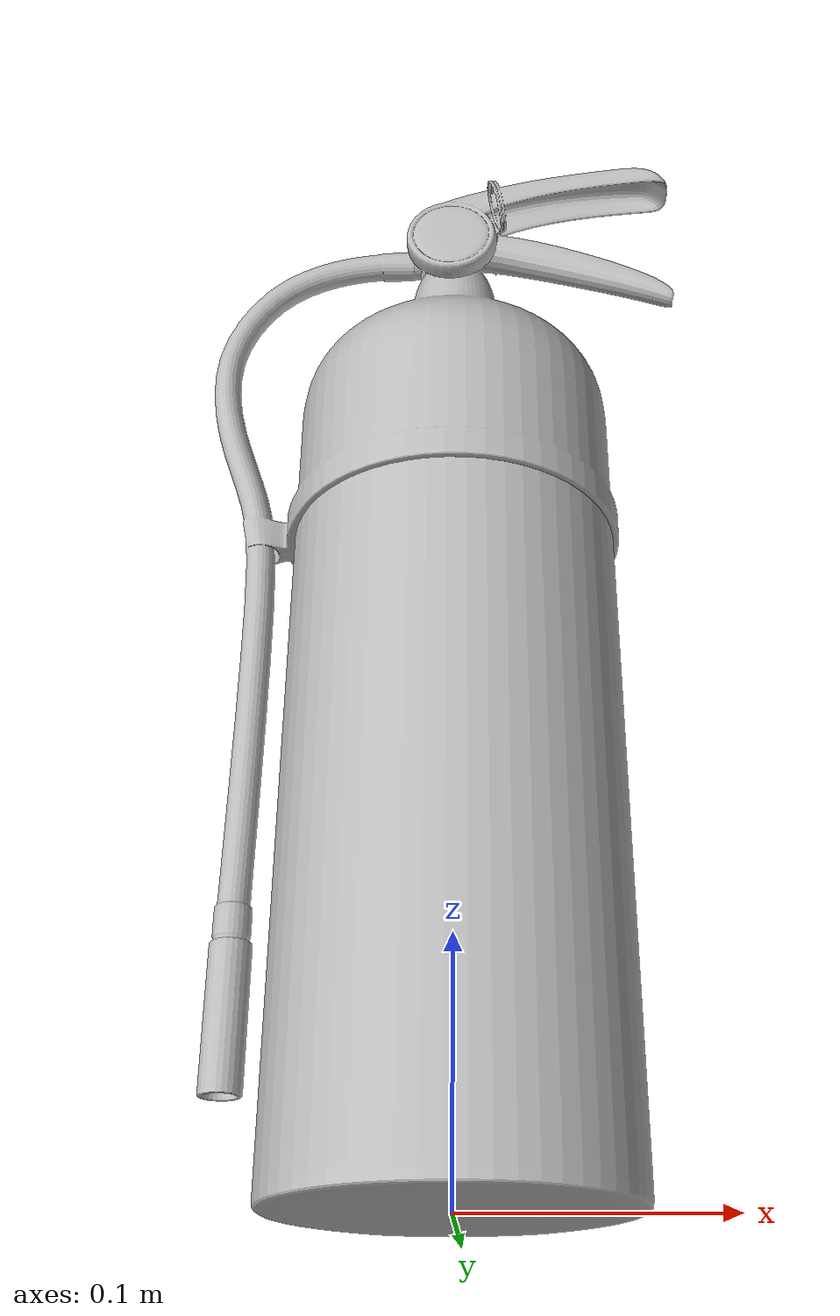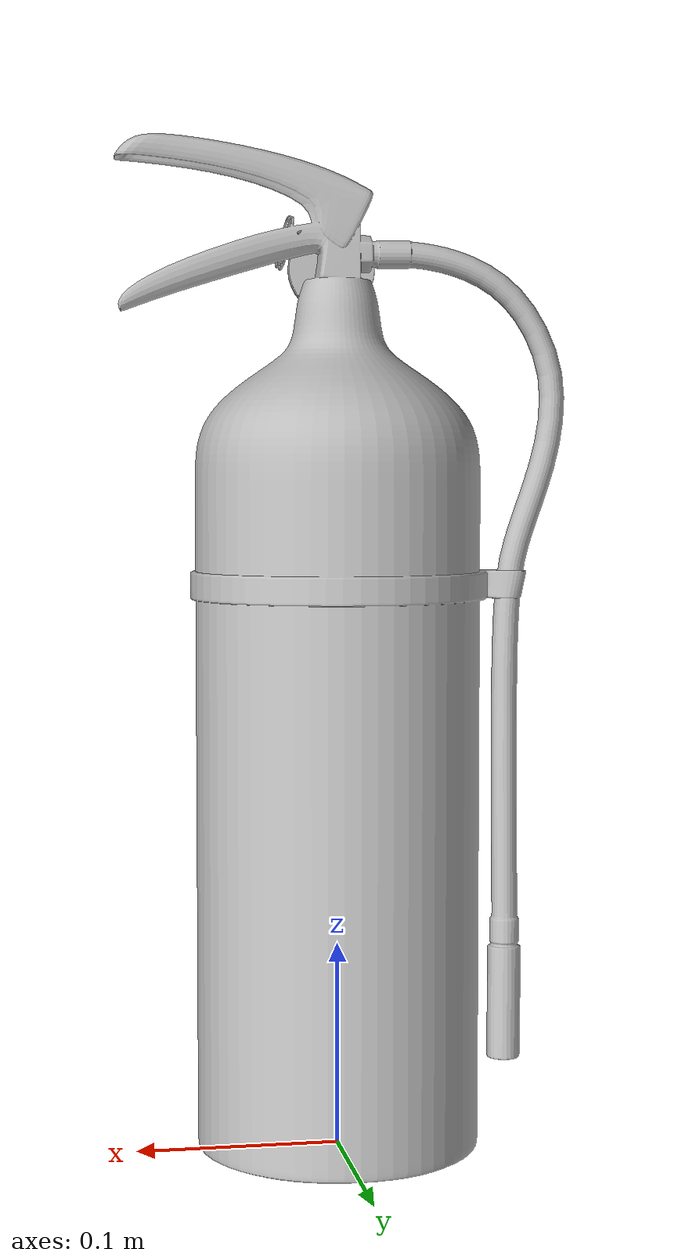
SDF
<?xml version="1.0" ?>
<sdf version="1.5">
  <model name="sohwagi">
    <link name="link">
      <collision name="collision">
        <geometry>
          <mesh>
            <scale>0.1 0.1 0.1 0.1</scale>
            <uri>model://sohwagi/meshes/sohwagi.dae</uri>
          </mesh>
        </geometry>
      </collision>
      <visual name="visual">
        <geometry>
          <mesh>
            <scale>0.1 0.1 0.1 0.1</scale>
            <uri>model://sohwagi/meshes/sohwagi.dae</uri>
          </mesh>
        </geometry>
        <material>
          <script>
            <uri>model://sohwagi/materials/scripts</uri>
            <uri>model://sohwagi/materials/textures</uri>
            <name>sohwagi/Diffuse</name>
          </script>
        </material>
      </visual>
    </link>
  </model>
</sdf>
